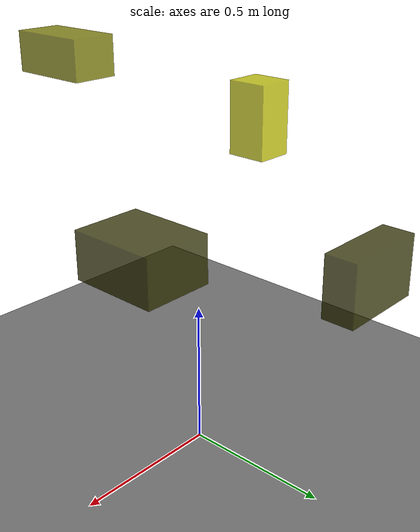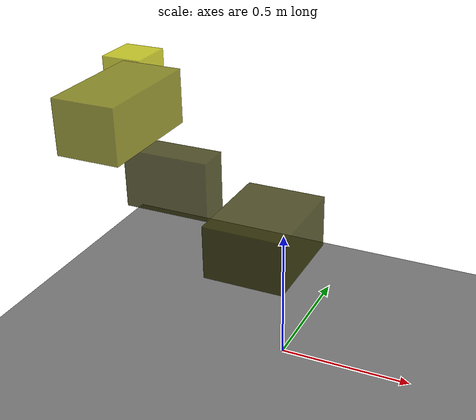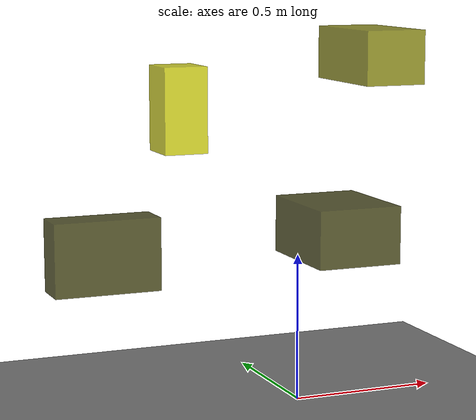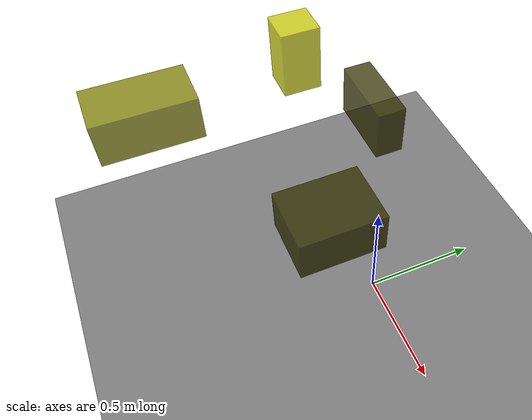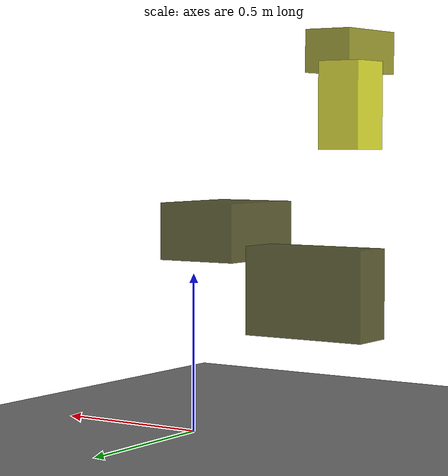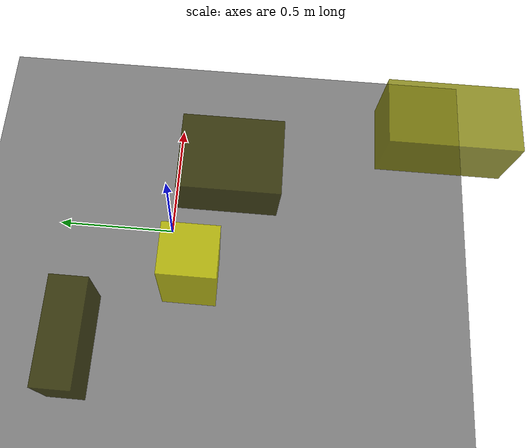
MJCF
<?xml version="1.0"?>
<mujoco model="obstacle_scene">
  <compiler angle="radian" coordinate="local"/>
  <option timestep="0.001" gravity="0 0 -9.81"/>

  <asset>
    <material name="obstacle_mat" rgba="0.8 0.8 0.0 0.8"/>
    <material name="ground_mat" rgba="0.5 0.5 0.5 1"/>
  </asset>

  <worldbody>
    <!-- Ground plane -->
    <geom name="ground" type="plane" size="3 3 0.1" material="ground_mat"/>

    <!-- Obstacles -->
    <body name="obstacle_0" pos="-0.601112 0.268476 0.496874">
      <geom name="obs_0" type="box" size="0.185343 0.067264 0.125858" rgba="0.2 0.2 0.0 0.8"/>
    </body>
    <body name="obstacle_1" pos="-0.123894 -0.770531 1.225388">
      <geom name="obs_1" type="box" size="0.086658 0.158517 0.074362" rgba="0.5 0.5 0.0 0.8"/>
    </body>
    <body name="obstacle_2" pos="-0.476414 -0.151935 1.026353">
      <geom name="obs_2" type="box" size="0.069024 0.075229 0.134035" rgba="0.8 0.8 0.0 0.8"/>
    </body>
    <body name="obstacle_3" pos="0.032509 -0.233423 0.626227">
      <geom name="obs_3" type="box" size="0.138185 0.176452 0.092472" rgba="0.2 0.2 0.0 0.8"/>
    </body>
  </worldbody>
</mujoco>
